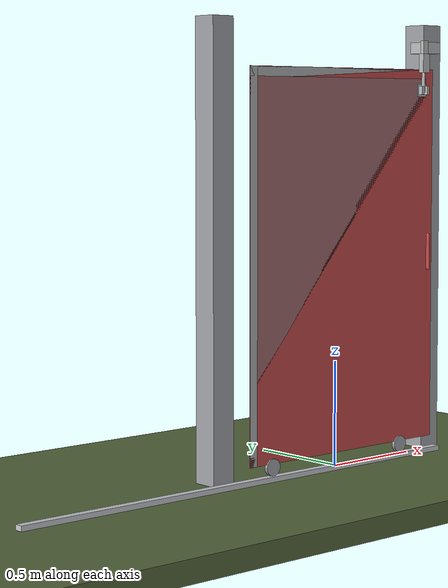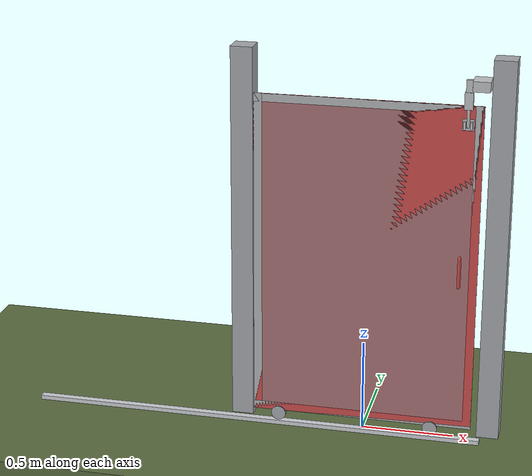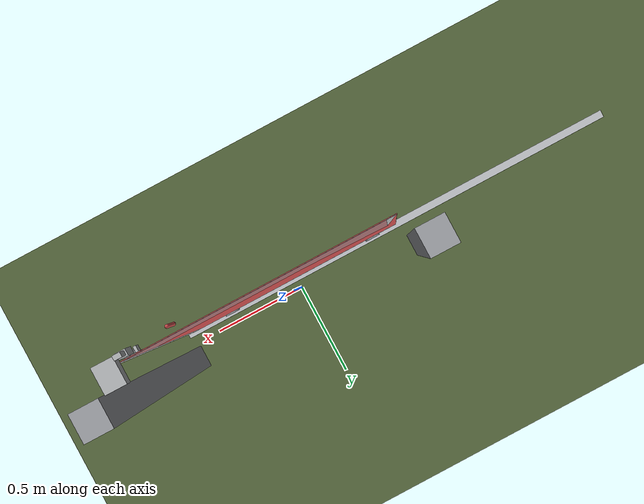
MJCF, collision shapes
<?xml version="1.0" ?>
<mujoco model="db0146_gate_sliding_simple">
  <compiler angle="radian" meshdir="../../hardware" texturedir="../../textures" autolimits="true" inertiafromgeom="false"/>
  <option timestep="0.002" integrator="implicitfast" cone="elliptic" impratio="10" noslip_iterations="3">
    <flag multiccd="enable"/>
  </option>
  <size memory="16M"/>
  <default>
    <geom condim="4" solref="0.005 1" solimp="0.95 0.99 0.001"/>
    <joint solreflimit="0.005 1" solimplimit="0.95 0.99 0.001"/>
    <tendon solreflimit="0.005 1"/>
    <equality solref="0.002 1"/>
  </default>
  <visual>
    <headlight ambient="0.4 0.4 0.4" diffuse="0.7 0.7 0.7" specular="0.2 0.2 0.2"/>
    <quality shadowsize="4096"/>
    <map znear="0.01" zfar="60"/>
  </visual>
  <asset>
    <mesh name="pull_1e5d69a91a" file="pull_1e5d69a91a.obj"/>
    <material name="mat_floor" rgba="0.35 0.42 0.25 1" specular="0.2" shininess="0.15" reflectance="0"/>
    <material name="mat_wall" rgba="0.78 0.76 0.7 1" specular="0.2" shininess="0.1" reflectance="0"/>
    <material name="mat_frame" rgba="0.65 0.66 0.68 1" specular="0.74" shininess="0.5" reflectance="0.36"/>
    <material name="mat_track" rgba="0.8 0.81 0.83 1" specular="0.8" shininess="0.6" reflectance="0.4"/>
    <material name="mat_leaf" rgba="0.7 0.71 0.72 1" specular="0.74" shininess="0.5" reflectance="0.36"/>
    <material name="mat_mesh_infill" rgba="0.6 0.62 0.64 0.55" specular="0.68" shininess="0.3" reflectance="0.1"/>
    <material name="mat_roller" rgba="0.65 0.66 0.68 1" specular="0.74" shininess="0.5" reflectance="0.36"/>
    <material name="mat_op_stainless" rgba="0.75 0.76 0.77 1" specular="0.8" shininess="0.65" reflectance="0.4"/>
    <material name="mat_ebolt" rgba="0.75 0.76 0.77 1" specular="0.8" shininess="0.65" reflectance="0.4"/>
    <material name="mat_hook" rgba="0.75 0.76 0.77 1" specular="0.8" shininess="0.65" reflectance="0.4"/>
    <texture name="skybox" type="skybox" builtin="gradient" rgb1="0.6 0.7 0.85" rgb2="0.9 0.92 0.95" width="256" height="256"/>
  </asset>
  <worldbody>
    <light name="sun" pos="1.5 -2.5 4" dir="-0.3 0.5 -0.8" directional="true" diffuse="0.8 0.8 0.8" specular="0.3 0.3 0.3" castshadow="true"/>
    <light name="fill" pos="-1.5 2.5 3" dir="0.3 -0.5 -0.7" directional="true" diffuse="0.35 0.35 0.4" castshadow="false"/>
    <camera name="robot_view" pos="0 -2.359375 1.585625" xyaxes="1 0 0 0 0.26963 0.962964" fovy="52"/>
    <camera name="far_view" pos="0 2.359375 1.585625" xyaxes="-1 0 0 0 -0.26963 0.962964" fovy="52"/>
    <camera name="iso" pos="1.793125 -1.981875 1.963125" xyaxes="0.741536 0.670913 0 -0.242917 0.268487 0.932151" fovy="46"/>
    <camera name="detail_handle" pos="0.76 -1.2215 1.35" xyaxes="0.975133 0.221621 0 -0.065674 0.288965 0.955084" fovy="38"/>
    <geom name="floor" type="box" size="6 6 0.05" pos="0 0 -0.05" material="mat_floor" group="0" contype="1" conaffinity="1" friction="0.8 0.005 0.0001" density="2400"/>
    <geom name="post_l" type="box" size="0.06 0.06 1.05" pos="-0.685 0.08 1.05" material="mat_frame" group="0" contype="1" conaffinity="1" friction="0.6 0.005 0.0001" density="7850"/>
    <geom name="post_r" type="box" size="0.06 0.06 1.05" pos="0.685 0.08 1.05" material="mat_frame" group="0" contype="1" conaffinity="1" friction="0.6 0.005 0.0001" density="7850"/>
    <geom name="gate_rail" type="box" size="1.25 0.02 0.012" pos="-0.6 -0.06 0.012" material="mat_track" group="0" contype="1" conaffinity="1" friction="0.6 0.005 0.0001" density="2700"/>
    <geom name="leaf_electric_bolt_housing" type="box" size="0.022 0.014 0.045" pos="0.52 -0.0795 1.91" material="mat_ebolt" group="1" contype="0" conaffinity="0" density="7900"/>
    <geom name="leaf_electric_bolt_riser" type="box" size="0.016 0.01 0.034" pos="0.52 -0.0795 1.985" material="mat_ebolt" group="1" contype="0" conaffinity="0" density="7900"/>
    <geom name="leaf_electric_bolt_riser_strap_0" type="box" size="0.045 0.05575 0.0272" pos="0.5805 -0.03175 1.985" material="mat_ebolt" group="1" contype="0" conaffinity="0" density="7850"/>
    <site name="approach_point" pos="0 -1.5 0" quat="1 0 0 0" size="0.05" rgba="0.2 0.9 0.2 0.5" group="4"/>
    <site name="goal_point" pos="0 1.5 0" quat="1 0 0 0" size="0.05" rgba="0.2 0.9 0.2 0.5" group="4"/>
    <site name="door_plane_center" pos="0 0 0.925" quat="1 0 0 0" size="0.02" rgba="0.2 0.9 0.2 0.5" group="4"/>
    <body name="leaf" pos="0 -0.06 0">
      <inertial pos="0.048851 -0.003783 0.855665" mass="6.636432" quat="0.533226 -0.537832 -0.458189 -0.465263" diaginertia="0.922968994 2.392152121 3.312843174"/>
      <joint name="leaf_slide" type="slide" axis="-1 0 0" limited="true" range="0 1.2" damping="2.33934" frictionloss="47.920156" armature="0.5"/>
      <geom name="leaf_slab_col" type="box" size="0.6 0.0015 0.9" pos="0 0 0.98" material="mat_leaf" group="3" contype="1" conaffinity="1" rgba="0.8 0.3 0.3 0.25" friction="0.45 0.005 0.0001" density="1"/>
      <geom name="leaf_rail_b" type="box" size="0.6 0.0015 0.0225" pos="0 0 0.1025" material="mat_leaf" group="1" contype="0" conaffinity="0" density="1"/>
      <geom name="leaf_rail_t" type="box" size="0.6 0.0015 0.0225" pos="0 0 1.8575" material="mat_leaf" group="1" contype="0" conaffinity="0" density="1"/>
      <geom name="leaf_stile_h" type="box" size="0.0225 0.0015 0.9" pos="-0.5775 0 0.98" material="mat_leaf" group="1" contype="0" conaffinity="0" density="1"/>
      <geom name="leaf_stile_l" type="box" size="0.0225 0.0015 0.9" pos="0.5775 0 0.98" material="mat_leaf" group="1" contype="0" conaffinity="0" density="1"/>
      <geom name="leaf_mesh" type="box" size="0.555 0.0015 0.855" pos="0 0 0.98" material="mat_mesh_infill" group="1" contype="0" conaffinity="0" density="1"/>
      <geom name="leaf_roller_0" type="cylinder" size="0.04 0.008" pos="-0.46 0 0.064" quat="0.707107 -0.707107 0 0" material="mat_roller" group="1" contype="0" conaffinity="0" density="7850"/>
      <geom name="leaf_roller_1" type="cylinder" size="0.04 0.008" pos="0.38 0 0.064" quat="0.707107 -0.707107 0 0" material="mat_roller" group="1" contype="0" conaffinity="0" density="7850"/>
      <geom name="leaf_pull_n" type="mesh" mesh="pull_1e5d69a91a" pos="0.51 -0.0015 1" quat="0.707107 0.707107 0 0" material="mat_op_stainless" group="1" contype="0" conaffinity="0" density="3000"/>
      <geom name="leaf_pull_col_n" type="capsule" size="0.0095 0.08" pos="0.51 -0.0615 1" material="mat_op_stainless" group="3" contype="1" conaffinity="1" rgba="0.8 0.3 0.3 0.25" friction="0.7 0.01 0.0001" density="3000"/>
      <geom name="leaf_ebolt_keeper_n" type="box" size="0.006 0.014 0.02" pos="0.502 -0.0155 1.78" material="mat_ebolt" group="0" contype="1" conaffinity="1" friction="0.6 0.005 0.0001" density="7900"/>
      <geom name="leaf_ebolt_keeper_p" type="box" size="0.006 0.014 0.02" pos="0.538 -0.0155 1.78" material="mat_ebolt" group="0" contype="1" conaffinity="1" friction="0.6 0.005 0.0001" density="7900"/>
      <geom name="leaf_ebolt_keeper_base" type="box" size="0.03 0.002 0.03" pos="0.52 -0.0035 1.78" material="mat_ebolt" group="1" contype="0" conaffinity="0" density="7900"/>
      <site name="leaf_pull_grip_n" pos="0.51 -0.0615 1" quat="1 0 0 0" size="0.012" rgba="0.2 0.9 0.2 0.5" group="4"/>
      <site name="leaf_edge_mid" pos="0.6 0 0.98" quat="1 0 0 0" size="0.02" rgba="0.2 0.9 0.2 0.5" group="4"/>
    </body>
    <body name="leaf_electric_bolt" pos="0.52 -0.0755 1.815">
      <inertial pos="0 0 0" mass="0.150368" quat="0.707107 0 0.707107 0" diaginertia="0.000004703 0.000115179 0.000115179"/>
      <joint name="leaf_electric_bolt_slide" type="slide" axis="0 0 1" limited="true" range="0 0.04" damping="5" frictionloss="2" armature="0.1"/>
      <geom name="leaf_electric_bolt_geom" type="capsule" size="0.008 0.042" pos="0 0 0" material="mat_ebolt" group="0" contype="1" conaffinity="1" friction="0.4 0.005 0.0001" density="7900"/>
    </body>
  </worldbody>
  <equality>
    <weld name="leaf_electric_strike_hold" body1="leaf" body2="world" active="true"/>
  </equality>
  <sensor>
    <jointpos name="leaf_slide_pos" joint="leaf_slide"/>
    <jointvel name="leaf_slide_vel" joint="leaf_slide"/>
    <jointpos name="leaf_electric_bolt_slide_pos" joint="leaf_electric_bolt_slide"/>
    <jointvel name="leaf_electric_bolt_slide_vel" joint="leaf_electric_bolt_slide"/>
  </sensor>
</mujoco>
